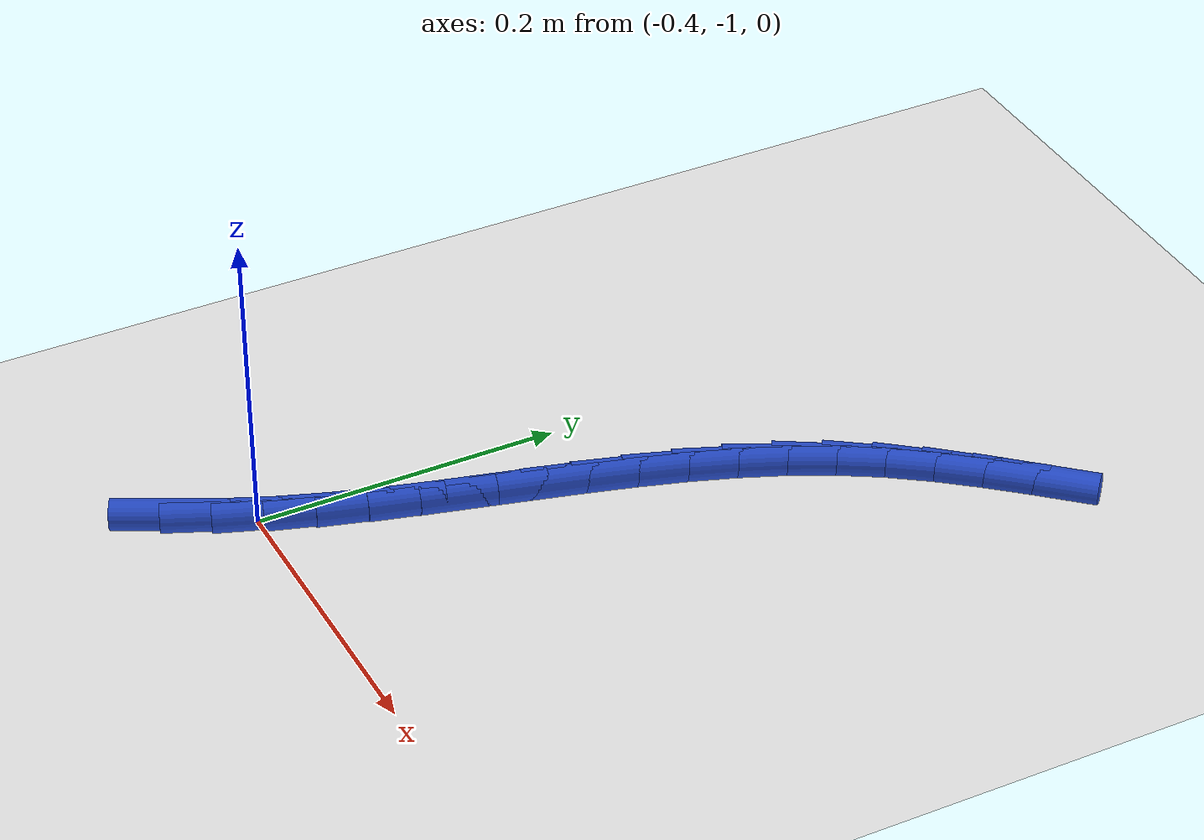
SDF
<sdf version="1.6">
 <world name="default">
  <model name="ground_plane">
   <static>1</static>
   <link name="link">
    <collision name="collision">
     <geometry><plane><normal>0 0 1</normal><size>100 100</size></plane></geometry>
     <surface><friction><ode><mu>100</mu><mu2>50</mu2></ode></friction></surface>
    </collision>
    <visual name="visual">
     <cast_shadows>0</cast_shadows>
     <geometry><plane><normal>0 0 1</normal><size>100 100</size></plane></geometry>
     <material>
      <script><uri>file://media/materials/scripts/gazebo.material</uri><name>Gazebo/WhiteGlow</name></script>
     </material>
    </visual>
   </link>
  </model>
  <model name="line">
   <link name="link_253">
    <pose>-0.41789009648362035 -1.045655835609965 0.01 0 1.57 1.0930282604931176</pose>
    <collision name="collision">
     <geometry><cylinder><radius>0.01</radius><length>0.08</length></cylinder></geometry>
    </collision>
    <visual name="visual">
     <material>
      <script><name>Gazebo/Blue</name><uri>file://media/materials/scripts/gazebo.material</uri></script>
     </material>
     <geometry><cylinder><radius>0.01</radius><length>0.08</length></cylinder></geometry>
    </visual>
   </link>
   <link name="link_254">
    <pose>-0.40379823043714874 -1.0184397583374292 0.01 0 1.57 1.1618730991637554</pose>
    <collision name="collision">
     <geometry><cylinder><radius>0.01</radius><length>0.08</length></cylinder></geometry>
    </collision>
    <visual name="visual">
     <material>
      <script><name>Gazebo/Blue</name><uri>file://media/materials/scripts/gazebo.material</uri></script>
     </material>
     <geometry><cylinder><radius>0.01</radius><length>0.08</length></cylinder></geometry>
    </visual>
   </link>
   <link name="link_255">
    <pose>-0.3915215473722112 -0.9901101470137332 0.01 0 1.57 1.2174477026128339</pose>
    <collision name="collision">
     <geometry><cylinder><radius>0.01</radius><length>0.08</length></cylinder></geometry>
    </collision>
    <visual name="visual">
     <material>
      <script><name>Gazebo/Blue</name><uri>file://media/materials/scripts/gazebo.material</uri></script>
     </material>
     <geometry><cylinder><radius>0.01</radius><length>0.08</length></cylinder></geometry>
    </visual>
   </link>
   <link name="link_256">
    <pose>-0.38073509586274473 -0.9608649366247702 0.01 0 1.57 1.260093082937583</pose>
    <collision name="collision">
     <geometry><cylinder><radius>0.01</radius><length>0.08</length></cylinder></geometry>
    </collision>
    <visual name="visual">
     <material>
      <script><name>Gazebo/Blue</name><uri>file://media/materials/scripts/gazebo.material</uri></script>
     </material>
     <geometry><cylinder><radius>0.01</radius><length>0.08</length></cylinder></geometry>
    </visual>
   </link>
   <link name="link_257">
    <pose>-0.3711139244826871 -0.9309020621564348 0.01 0 1.57 1.2903286110505343</pose>
    <collision name="collision">
     <geometry><cylinder><radius>0.01</radius><length>0.08</length></cylinder></geometry>
    </collision>
    <visual name="visual">
     <material>
      <script><name>Gazebo/Blue</name><uri>file://media/materials/scripts/gazebo.material</uri></script>
     </material>
     <geometry><cylinder><radius>0.01</radius><length>0.08</length></cylinder></geometry>
    </visual>
   </link>
   <link name="link_258">
    <pose>-0.36233308180597534 -0.9004194585946204 0.01 0 1.57 1.3086501120882668</pose>
    <collision name="collision">
     <geometry><cylinder><radius>0.01</radius><length>0.08</length></cylinder></geometry>
    </collision>
    <visual name="visual">
     <material>
      <script><name>Gazebo/Blue</name><uri>file://media/materials/scripts/gazebo.material</uri></script>
     </material>
     <geometry><cylinder><radius>0.01</radius><length>0.08</length></cylinder></geometry>
    </visual>
   </link>
   <link name="link_259">
    <pose>-0.35406761640654716 -0.8696150609252216 0.01 0 1.57 1.3154081335543129</pose>
    <collision name="collision">
     <geometry><cylinder><radius>0.01</radius><length>0.08</length></cylinder></geometry>
    </collision>
    <visual name="visual">
     <material>
      <script><name>Gazebo/Blue</name><uri>file://media/materials/scripts/gazebo.material</uri></script>
     </material>
     <geometry><cylinder><radius>0.01</radius><length>0.08</length></cylinder></geometry>
    </visual>
   </link>
   <link name="link_260">
    <pose>-0.34599257685833973 -0.8386868041341322 0.01 0 1.57 1.3107452238540762</pose>
    <collision name="collision">
     <geometry><cylinder><radius>0.01</radius><length>0.08</length></cylinder></geometry>
    </collision>
    <visual name="visual">
     <material>
      <script><name>Gazebo/Blue</name><uri>file://media/materials/scripts/gazebo.material</uri></script>
     </material>
     <geometry><cylinder><radius>0.01</radius><length>0.08</length></cylinder></geometry>
    </visual>
   </link>
   <link name="link_261">
    <pose>-0.33778301173529063 -0.8078326232072464 0.01 0 1.57 1.2945753929340822</pose>
    <collision name="collision">
     <geometry><cylinder><radius>0.01</radius><length>0.08</length></cylinder></geometry>
    </collision>
    <visual name="visual">
     <material>
      <script><name>Gazebo/Blue</name><uri>file://media/materials/scripts/gazebo.material</uri></script>
     </material>
     <geometry><cylinder><radius>0.01</radius><length>0.08</length></cylinder></geometry>
    </visual>
   </link>
   <link name="link_262">
    <pose>-0.3291139696113372 -0.7772504531304584 0.01 0 1.57 1.266598935544685</pose>
    <collision name="collision">
     <geometry><cylinder><radius>0.01</radius><length>0.08</length></cylinder></geometry>
    </collision>
    <visual name="visual">
     <material>
      <script><name>Gazebo/Blue</name><uri>file://media/materials/scripts/gazebo.material</uri></script>
     </material>
     <geometry><cylinder><radius>0.01</radius><length>0.08</length></cylinder></geometry>
    </visual>
   </link>
   <link name="link_263">
    <pose>-0.3196604990604166 -0.7471382288896614 0.01 0 1.57 1.2263570347630492</pose>
    <collision name="collision">
     <geometry><cylinder><radius>0.01</radius><length>0.08</length></cylinder></geometry>
    </collision>
    <visual name="visual">
     <material>
      <script><name>Gazebo/Blue</name><uri>file://media/materials/scripts/gazebo.material</uri></script>
     </material>
     <geometry><cylinder><radius>0.01</radius><length>0.08</length></cylinder></geometry>
    </visual>
   </link>
   <link name="link_264">
    <pose>-0.3090976486564666 -0.7176938854707504 0.01 0 1.57 1.1733408626916375</pose>
    <collision name="collision">
     <geometry><cylinder><radius>0.01</radius><length>0.08</length></cylinder></geometry>
    </collision>
    <visual name="visual">
     <material>
      <script><name>Gazebo/Blue</name><uri>file://media/materials/scripts/gazebo.material</uri></script>
     </material>
     <geometry><cylinder><radius>0.01</radius><length>0.08</length></cylinder></geometry>
    </visual>
   </link>
   <link name="link_265">
    <pose>-0.2971004669734249 -0.6891153578596202 0.01 0 1.57 1.107175584316042</pose>
    <collision name="collision">
     <geometry><cylinder><radius>0.01</radius><length>0.08</length></cylinder></geometry>
    </collision>
    <visual name="visual">
     <material>
      <script><name>Gazebo/Blue</name><uri>file://media/materials/scripts/gazebo.material</uri></script>
     </material>
     <geometry><cylinder><radius>0.01</radius><length>0.08</length></cylinder></geometry>
    </visual>
   </link>
   <link name="link_266">
    <pose>-0.28334400258522796 -0.6616005810421627 0.01 0 1.57 1.028566363893811</pose>
    <collision name="collision">
     <geometry><cylinder><radius>0.01</radius><length>0.08</length></cylinder></geometry>
    </collision>
    <visual name="visual">
     <material>
      <script><name>Gazebo/Blue</name><uri>file://media/materials/scripts/gazebo.material</uri></script>
     </material>
     <geometry><cylinder><radius>0.01</radius><length>0.08</length></cylinder></geometry>
    </visual>
   </link>
   <link name="link_267">
    <pose>-0.26752102236486275 -0.6353368435658961 0.01 0 1.57 0.9529549687122378</pose>
    <collision name="collision">
     <geometry><cylinder><radius>0.01</radius><length>0.08</length></cylinder></geometry>
    </collision>
    <visual name="visual">
     <material>
      <script><name>Gazebo/Blue</name><uri>file://media/materials/scripts/gazebo.material</uri></script>
     </material>
     <geometry><cylinder><radius>0.01</radius><length>0.08</length></cylinder></geometry>
    </visual>
   </link>
   <link name="link_268">
    <pose>-0.2497128131330267 -0.6102779830319401 0.01 0 1.57 0.8952481193381341</pose>
    <collision name="collision">
     <geometry><cylinder><radius>0.01</radius><length>0.08</length></cylinder></geometry>
    </collision>
    <visual name="visual">
     <material>
      <script><name>Gazebo/Blue</name><uri>file://media/materials/scripts/gazebo.material</uri></script>
     </material>
     <geometry><cylinder><radius>0.01</radius><length>0.08</length></cylinder></geometry>
    </visual>
   </link>
   <link name="link_269">
    <pose>-0.23037890989215337 -0.5861505581165625 0.01 0 1.57 0.8558290110192586</pose>
    <collision name="collision">
     <geometry><cylinder><radius>0.01</radius><length>0.08</length></cylinder></geometry>
    </collision>
    <visual name="visual">
     <material>
      <script><name>Gazebo/Blue</name><uri>file://media/materials/scripts/gazebo.material</uri></script>
     </material>
     <geometry><cylinder><radius>0.01</radius><length>0.08</length></cylinder></geometry>
    </visual>
   </link>
   <link name="link_270">
    <pose>-0.2099945111281802 -0.562671715739777 0.01 0 1.57 0.8342197833810854</pose>
    <collision name="collision">
     <geometry><cylinder><radius>0.01</radius><length>0.08</length></cylinder></geometry>
    </collision>
    <visual name="visual">
     <material>
      <script><name>Gazebo/Blue</name><uri>file://media/materials/scripts/gazebo.material</uri></script>
     </material>
     <geometry><cylinder><radius>0.01</radius><length>0.08</length></cylinder></geometry>
    </visual>
   </link>
  </model>
 </world>
</sdf>
